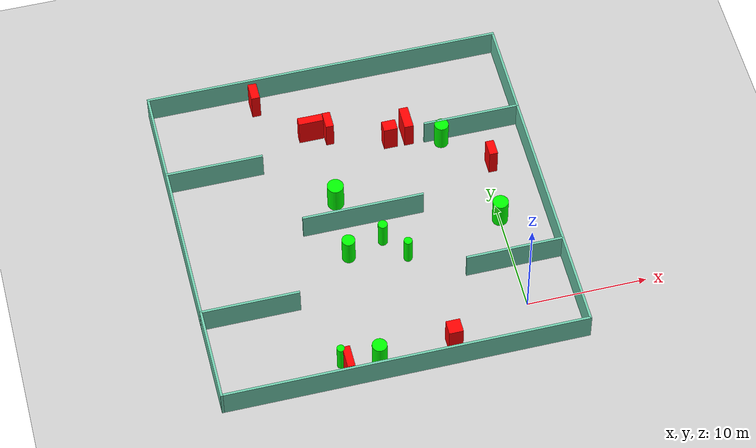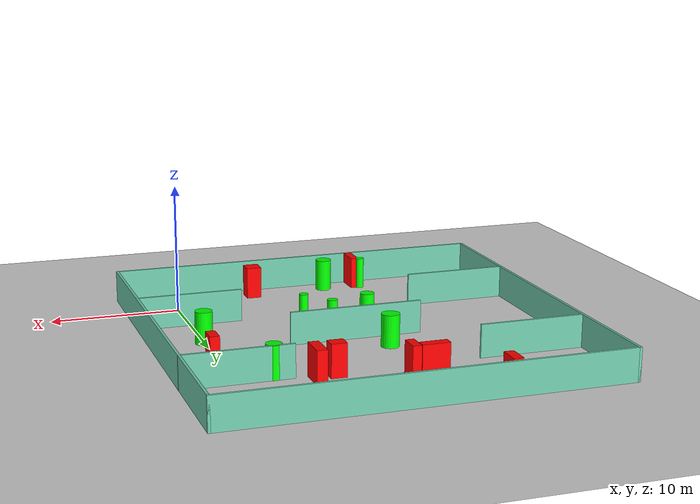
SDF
<sdf version="1.7">
 <world name="default">
  <light name="sun" type="directional">
   <pose>0 0 10 0 -0 0</pose>
   <diffuse>0.8 0.8 0.8 1</diffuse>
   <specular>0.2 0.2 0.2 1</specular>
   <attenuation>
    <range>1000</range>
    <constant>0.9</constant>
    <linear>0.01</linear>
    <quadratic>0.001</quadratic>
   </attenuation>
   <direction>-0.5 0.1 -0.9</direction>
   <spot><inner_angle>0</inner_angle><outer_angle>0</outer_angle><falloff>0</falloff></spot>
  </light>
  <model name="ground_plane">
   <static>1</static>
   <link name="link">
    <collision name="collision">
     <geometry><plane><normal>0 0 1</normal><size>100 100</size></plane></geometry>
     <surface>
      <contact><collide_bitmask>65535</collide_bitmask></contact>
      <friction><ode><mu>100</mu><mu2>50</mu2></ode></friction>
     </surface>
    </collision>
    <visual name="visual">
     <cast_shadows>0</cast_shadows>
     <geometry><plane><normal>0 0 1</normal><size>100 100</size></plane></geometry>
     <material>
      <script><uri>file://media/materials/scripts/gazebo.material</uri><name>Gazebo/Grey</name></script>
     </material>
    </visual>
   </link>
  </model>
  <gravity>0 0 -9.8</gravity>
  <magnetic_field>6e-06 2.3e-05 -4.2e-05</magnetic_field>
  <atmosphere type="adiabatic"/>
  <physics type="ode">
   <max_step_size>0.001</max_step_size>
   <real_time_factor>1</real_time_factor>
   <real_time_update_rate>1000</real_time_update_rate>
  </physics>
  <scene><ambient>0.4 0.4 0.4 1</ambient><background>0.7 0.7 0.7 1</background><shadows>1</shadows></scene>
  <spherical_coordinates>
   <surface_model>EARTH_WGS84</surface_model>
   <latitude_deg>0</latitude_deg>
   <longitude_deg>0</longitude_deg>
   <elevation>0</elevation>
   <heading_deg>0</heading_deg>
  </spherical_coordinates>
  <model name="my_base_walls">
   <link name="Wall_10">
    <collision name="Wall_10_Collision">
     <geometry><box><size>8.2 0.2 2.5</size></box></geometry>
     <pose>0 0 1.25 0 -0 0</pose>
    </collision>
    <visual name="Wall_10_Visual">
     <pose>0 0 1.25 0 -0 0</pose>
     <geometry><box><size>8.2 0.2 2.5</size></box></geometry>
     <material>
      <script><uri>file://media/materials/scripts/gazebo.material</uri><name>Gazebo/Grey</name></script>
      <ambient>0.435294 0.796078 0.67451 1</ambient>
     </material>
     <meta><layer>0</layer></meta>
    </visual>
    <pose>-11 -7 0 0 -0 0</pose>
   </link>
   <link name="Wall_12">
    <collision name="Wall_12_Collision">
     <geometry><box><size>8.2 0.2 2.5</size></box></geometry>
     <pose>0 0 1.25 0 -0 0</pose>
    </collision>
    <visual name="Wall_12_Visual">
     <pose>0 0 1.25 0 -0 0</pose>
     <geometry><box><size>8.2 0.2 2.5</size></box></geometry>
     <material>
      <script><uri>file://media/materials/scripts/gazebo.material</uri><name>Gazebo/Grey</name></script>
      <ambient>0.435294 0.796078 0.67451 1</ambient>
     </material>
     <meta><layer>0</layer></meta>
    </visual>
    <pose>-11 7 0 0 -0 0</pose>
   </link>
   <link name="Wall_14">
    <collision name="Wall_14_Collision">
     <geometry><box><size>8.2 0.2 2.5</size></box></geometry>
     <pose>0 0 1.25 0 -0 0</pose>
    </collision>
    <visual name="Wall_14_Visual">
     <pose>0 0 1.25 0 -0 0</pose>
     <geometry><box><size>8.2 0.2 2.5</size></box></geometry>
     <material>
      <script><uri>file://media/materials/scripts/gazebo.material</uri><name>Gazebo/Grey</name></script>
      <ambient>0.435294 0.796078 0.67451 1</ambient>
     </material>
     <meta><layer>0</layer></meta>
    </visual>
    <pose>11 7 0 0 -0 3.14159</pose>
   </link>
   <link name="Wall_16">
    <collision name="Wall_16_Collision">
     <geometry><box><size>10.2 0.2 2.5</size></box></geometry>
     <pose>0 0 1.25 0 -0 0</pose>
    </collision>
    <visual name="Wall_16_Visual">
     <pose>0 0 1.25 0 -0 0</pose>
     <geometry><box><size>10.2 0.2 2.5</size></box></geometry>
     <material>
      <script><uri>file://media/materials/scripts/gazebo.material</uri><name>Gazebo/Grey</name></script>
      <ambient>0.435294 0.796078 0.67451 1</ambient>
     </material>
     <meta><layer>0</layer></meta>
    </visual>
    <pose>0 0 0 0 -0 3.14159</pose>
   </link>
   <link name="Wall_2">
    <collision name="Wall_2_Collision">
     <geometry><box><size>30.2 0.2 2.5</size></box></geometry>
     <pose>0 0 1.25 0 -0 0</pose>
    </collision>
    <visual name="Wall_2_Visual">
     <pose>0 0 1.25 0 -0 0</pose>
     <geometry><box><size>30.2 0.2 2.5</size></box></geometry>
     <material>
      <script><uri>file://media/materials/scripts/gazebo.material</uri><name>Gazebo/Grey</name></script>
      <ambient>0.435294 0.796078 0.67451 1</ambient>
     </material>
     <meta><layer>0</layer></meta>
    </visual>
    <pose>0 -15 0 0 -0 3.14159</pose>
   </link>
   <link name="Wall_3">
    <collision name="Wall_3_Collision">
     <geometry><box><size>30.2 0.2 2.5</size></box></geometry>
     <pose>0 0 1.25 0 -0 0</pose>
    </collision>
    <visual name="Wall_3_Visual">
     <pose>0 0 1.25 0 -0 0</pose>
     <geometry><box><size>30.2 0.2 2.5</size></box></geometry>
     <material>
      <script><uri>file://media/materials/scripts/gazebo.material</uri><name>Gazebo/Grey</name></script>
      <ambient>0.435294 0.796078 0.67451 1</ambient>
     </material>
     <meta><layer>0</layer></meta>
    </visual>
    <pose>-15 0 0 0 -0 1.5708</pose>
   </link>
   <link name="Wall_4">
    <collision name="Wall_4_Collision">
     <geometry><box><size>30.2 0.2 2.5</size></box></geometry>
     <pose>0 0 1.25 0 -0 0</pose>
    </collision>
    <visual name="Wall_4_Visual">
     <pose>0 0 1.25 0 -0 0</pose>
     <geometry><box><size>30.2 0.2 2.5</size></box></geometry>
     <material>
      <script><uri>file://media/materials/scripts/gazebo.material</uri><name>Gazebo/Grey</name></script>
      <ambient>0.435294 0.796078 0.67451 1</ambient>
     </material>
     <meta><layer>0</layer></meta>
    </visual>
    <pose>0 15 0 0 -0 0</pose>
   </link>
   <link name="Wall_6">
    <collision name="Wall_6_Collision">
     <geometry><box><size>30.2 0.2 2.5</size></box></geometry>
     <pose>0 0 1.25 0 -0 0</pose>
    </collision>
    <visual name="Wall_6_Visual">
     <pose>0 0 1.25 0 -0 0</pose>
     <geometry><box><size>30.2 0.2 2.5</size></box></geometry>
     <material>
      <script><uri>file://media/materials/scripts/gazebo.material</uri><name>Gazebo/Grey</name></script>
      <ambient>0.435294 0.796078 0.67451 1</ambient>
     </material>
     <meta><layer>0</layer></meta>
    </visual>
    <pose>15 0 0 0 -0 1.5708</pose>
   </link>
   <link name="Wall_8">
    <collision name="Wall_8_Collision">
     <geometry><box><size>8.2 0.2 2.5</size></box></geometry>
     <pose>0 0 1.25 0 -0 0</pose>
    </collision>
    <visual name="Wall_8_Visual">
     <pose>0 0 1.25 0 -0 0</pose>
     <geometry><box><size>8.2 0.2 2.5</size></box></geometry>
     <material>
      <script><uri>file://media/materials/scripts/gazebo.material</uri><name>Gazebo/Grey</name></script>
      <ambient>0.435294 0.796078 0.67451 1</ambient>
     </material>
     <meta><layer>0</layer></meta>
    </visual>
    <pose>11 -7 0 0 -0 3.14159</pose>
   </link>
   <static>1</static>
   <pose>-11 11 0 0 -0 0</pose>
  </model>
  <model name="cylinder1">
   <static>1</static>
   <link name="link">
    <inertial>
     <mass>1</mass>
     <inertia><ixx>0.5</ixx><ixy>0</ixy><ixz>0</ixz><iyy>0.5</iyy><iyz>0</iyz><izz>1</izz></inertia>
    </inertial>
    <collision name="collision">
     <geometry><cylinder><radius>0.5513352554364256</radius><length>2.5</length></cylinder></geometry>
    </collision>
    <visual name="visual">
     <geometry><cylinder><radius>0.5513352554364256</radius><length>2.5</length></cylinder></geometry>
     <material>
      <ambient>0 1 0 1</ambient>
      <diffuse>0 1 0 1</diffuse>
      <specular>0.1 0.1 0.1 1</specular>
      <emissive>0 0 0 0</emissive>
     </material>
    </visual>
   </link>
   <pose>-12.972573947722967 7.961723705255546 1.25 0 0 0</pose>
  </model>
  <model name="cylinder2">
   <static>1</static>
   <link name="link">
    <inertial>
     <mass>1</mass>
     <inertia><ixx>0.5</ixx><ixy>0</ixy><ixz>0</ixz><iyy>0.5</iyy><iyz>0</iyz><izz>1</izz></inertia>
    </inertial>
    <collision name="collision">
     <geometry><cylinder><radius>0.6138288860085919</radius><length>2.5</length></cylinder></geometry>
    </collision>
    <visual name="visual">
     <geometry><cylinder><radius>0.6138288860085919</radius><length>2.5</length></cylinder></geometry>
     <material>
      <ambient>0 1 0 1</ambient>
      <diffuse>0 1 0 1</diffuse>
      <specular>0.1 0.1 0.1 1</specular>
      <emissive>0 0 0 0</emissive>
     </material>
    </visual>
   </link>
   <pose>-12.91001019505146 -2.4635879589238265 1.25 0 0 0</pose>
  </model>
  <model name="cylinder3">
   <static>1</static>
   <link name="link">
    <inertial>
     <mass>1</mass>
     <inertia><ixx>0.5</ixx><ixy>0</ixy><ixz>0</ixz><iyy>0.5</iyy><iyz>0</iyz><izz>1</izz></inertia>
    </inertial>
    <collision name="collision">
     <geometry><cylinder><radius>0.5940500761247494</radius><length>2.5</length></cylinder></geometry>
    </collision>
    <visual name="visual">
     <geometry><cylinder><radius>0.5940500761247494</radius><length>2.5</length></cylinder></geometry>
     <material>
      <ambient>0 1 0 1</ambient>
      <diffuse>0 1 0 1</diffuse>
      <specular>0.1 0.1 0.1 1</specular>
      <emissive>0 0 0 0</emissive>
     </material>
    </visual>
   </link>
   <pose>-2.690612840241389 17.559873797720964 1.25 0 0 0</pose>
  </model>
  <model name="cylinder4">
   <static>1</static>
   <link name="link">
    <inertial>
     <mass>1</mass>
     <inertia><ixx>0.5</ixx><ixy>0</ixy><ixz>0</ixz><iyy>0.5</iyy><iyz>0</iyz><izz>1</izz></inertia>
    </inertial>
    <collision name="collision">
     <geometry><cylinder><radius>0.3521699322546369</radius><length>2.5</length></cylinder></geometry>
    </collision>
    <visual name="visual">
     <geometry><cylinder><radius>0.3521699322546369</radius><length>2.5</length></cylinder></geometry>
     <material>
      <ambient>0 1 0 1</ambient>
      <diffuse>0 1 0 1</diffuse>
      <specular>0.1 0.1 0.1 1</specular>
      <emissive>0 0 0 0</emissive>
     </material>
    </visual>
   </link>
   <pose>-8.279582275860744 6.734442127642808 1.25 0 0 0</pose>
  </model>
  <model name="cylinder5">
   <static>1</static>
   <link name="link">
    <inertial>
     <mass>1</mass>
     <inertia><ixx>0.5</ixx><ixy>0</ixy><ixz>0</ixz><iyy>0.5</iyy><iyz>0</iyz><izz>1</izz></inertia>
    </inertial>
    <collision name="collision">
     <geometry><cylinder><radius>0.3247273935144362</radius><length>2.5</length></cylinder></geometry>
    </collision>
    <visual name="visual">
     <geometry><cylinder><radius>0.3247273935144362</radius><length>2.5</length></cylinder></geometry>
     <material>
      <ambient>0 1 0 1</ambient>
      <diffuse>0 1 0 1</diffuse>
      <specular>0.1 0.1 0.1 1</specular>
      <emissive>0 0 0 0</emissive>
     </material>
    </visual>
   </link>
   <pose>-15.962486282696638 -2.025332528319877 1.25 0 0 0</pose>
  </model>
  <model name="cylinder6">
   <static>1</static>
   <link name="link">
    <inertial>
     <mass>1</mass>
     <inertia><ixx>0.5</ixx><ixy>0</ixy><ixz>0</ixz><iyy>0.5</iyy><iyz>0</iyz><izz>1</izz></inertia>
    </inertial>
    <collision name="collision">
     <geometry><cylinder><radius>0.6878222020689262</radius><length>2.5</length></cylinder></geometry>
    </collision>
    <visual name="visual">
     <geometry><cylinder><radius>0.6878222020689262</radius><length>2.5</length></cylinder></geometry>
     <material>
      <ambient>0 1 0 1</ambient>
      <diffuse>0 1 0 1</diffuse>
      <specular>0.1 0.1 0.1 1</specular>
      <emissive>0 0 0 0</emissive>
     </material>
    </visual>
   </link>
   <pose>-12.757939797439537 13.510016751698156 1.25 0 0 0</pose>
  </model>
  <model name="cylinder7">
   <static>1</static>
   <link name="link">
    <inertial>
     <mass>1</mass>
     <inertia><ixx>0.5</ixx><ixy>0</ixy><ixz>0</ixz><iyy>0.5</iyy><iyz>0</iyz><izz>1</izz></inertia>
    </inertial>
    <collision name="collision">
     <geometry><cylinder><radius>0.3938116497127333</radius><length>2.5</length></cylinder></geometry>
    </collision>
    <visual name="visual">
     <geometry><cylinder><radius>0.3938116497127333</radius><length>2.5</length></cylinder></geometry>
     <material>
      <ambient>0 1 0 1</ambient>
      <diffuse>0 1 0 1</diffuse>
      <specular>0.1 0.1 0.1 1</specular>
      <emissive>0 0 0 0</emissive>
     </material>
    </visual>
   </link>
   <pose>-9.892593453010353 8.826074418504248 1.25 0 0 0</pose>
  </model>
  <model name="cylinder8">
   <static>1</static>
   <link name="link">
    <inertial>
     <mass>1</mass>
     <inertia><ixx>0.5</ixx><ixy>0</ixy><ixz>0</ixz><iyy>0.5</iyy><iyz>0</iyz><izz>1</izz></inertia>
    </inertial>
    <collision name="collision">
     <geometry><cylinder><radius>0.6531424931617518</radius><length>2.5</length></cylinder></geometry>
    </collision>
    <visual name="visual">
     <geometry><cylinder><radius>0.6531424931617518</radius><length>2.5</length></cylinder></geometry>
     <material>
      <ambient>0 1 0 1</ambient>
      <diffuse>0 1 0 1</diffuse>
      <specular>0.1 0.1 0.1 1</specular>
      <emissive>0 0 0 0</emissive>
     </material>
    </visual>
   </link>
   <pose>0.027240556571193508 8.664564317899227 1.25 0 0 0</pose>
  </model>
  <model name="box1">
   <static>1</static>
   <link name="link">
    <inertial>
     <mass>1</mass>
     <inertia><ixx>0.083</ixx><ixy>0</ixy><ixz>0</ixz><iyy>0.083</iyy><iyz>0</iyz><izz>0.083</izz></inertia>
    </inertial>
    <collision name="collision">
     <geometry><box><size>0.7720717612275165 2.0362131698967434 2.5</size></box></geometry>
    </collision>
    <visual name="visual">
     <geometry><box><size>0.7720717612275165 2.0362131698967434 2.5</size></box></geometry>
     <material>
      <ambient>1 0 0 1</ambient>
      <diffuse>1 0 0 1</diffuse>
      <specular>0.1 0.1 0.1 1</specular>
      <emissive>0 0 0 0</emissive>
     </material>
    </visual>
    <sensor name="my_contact" type="contact">
     <contact><collision>box_collision</collision><topic>__default_topic__</topic></contact>
    </sensor>
   </link>
   <pose>-5.381384117366826 19.001483472564107 1.25 0 0 0</pose>
  </model>
  <model name="box2">
   <static>1</static>
   <link name="link">
    <inertial>
     <mass>1</mass>
     <inertia><ixx>0.083</ixx><ixy>0</ixy><ixz>0</ixz><iyy>0.083</iyy><iyz>0</iyz><izz>0.083</izz></inertia>
    </inertial>
    <collision name="collision">
     <geometry><box><size>0.668641535850837 1.498119937814287 2.5</size></box></geometry>
    </collision>
    <visual name="visual">
     <geometry><box><size>0.668641535850837 1.498119937814287 2.5</size></box></geometry>
     <material>
      <ambient>1 0 0 1</ambient>
      <diffuse>1 0 0 1</diffuse>
      <specular>0.1 0.1 0.1 1</specular>
      <emissive>0 0 0 0</emissive>
     </material>
    </visual>
    <sensor name="my_contact" type="contact">
     <contact><collision>box_collision</collision><topic>__default_topic__</topic></contact>
    </sensor>
   </link>
   <pose>-11.800735208796798 20.34787887829893 1.25 0 0 0</pose>
  </model>
  <model name="box3">
   <static>1</static>
   <link name="link">
    <inertial>
     <mass>1</mass>
     <inertia><ixx>0.083</ixx><ixy>0</ixy><ixz>0</ixz><iyy>0.083</iyy><iyz>0</iyz><izz>0.083</izz></inertia>
    </inertial>
    <collision name="collision">
     <geometry><box><size>2.0838191472822447 0.7033495571050576 2.5</size></box></geometry>
    </collision>
    <visual name="visual">
     <geometry><box><size>2.0838191472822447 0.7033495571050576 2.5</size></box></geometry>
     <material>
      <ambient>1 0 0 1</ambient>
      <diffuse>1 0 0 1</diffuse>
      <specular>0.1 0.1 0.1 1</specular>
      <emissive>0 0 0 0</emissive>
     </material>
    </visual>
    <sensor name="my_contact" type="contact">
     <contact><collision>box_collision</collision><topic>__default_topic__</topic></contact>
    </sensor>
   </link>
   <pose>-13.224577086411243 20.728970266399944 1.25 0 0 0</pose>
  </model>
  <model name="box4">
   <static>1</static>
   <link name="link">
    <inertial>
     <mass>1</mass>
     <inertia><ixx>0.083</ixx><ixy>0</ixy><ixz>0</ixz><iyy>0.083</iyy><iyz>0</iyz><izz>0.083</izz></inertia>
    </inertial>
    <collision name="collision">
     <geometry><box><size>0.6222966977602139 1.9184562593149577 2.5</size></box></geometry>
    </collision>
    <visual name="visual">
     <geometry><box><size>0.6222966977602139 1.9184562593149577 2.5</size></box></geometry>
     <material>
      <ambient>1 0 0 1</ambient>
      <diffuse>1 0 0 1</diffuse>
      <specular>0.1 0.1 0.1 1</specular>
      <emissive>0 0 0 0</emissive>
     </material>
    </visual>
    <sensor name="my_contact" type="contact">
     <contact><collision>box_collision</collision><topic>__default_topic__</topic></contact>
    </sensor>
   </link>
   <pose>-15.517815187953882 -2.9108629957091168 1.25 0 0 0</pose>
  </model>
  <model name="box5">
   <static>1</static>
   <link name="link">
    <inertial>
     <mass>1</mass>
     <inertia><ixx>0.083</ixx><ixy>0</ixy><ixz>0</ixz><iyy>0.083</iyy><iyz>0</iyz><izz>0.083</izz></inertia>
    </inertial>
    <collision name="collision">
     <geometry><box><size>1.1655579128679503 0.9842806733382072 2.5</size></box></geometry>
    </collision>
    <visual name="visual">
     <geometry><box><size>1.1655579128679503 0.9842806733382072 2.5</size></box></geometry>
     <material>
      <ambient>1 0 0 1</ambient>
      <diffuse>1 0 0 1</diffuse>
      <specular>0.1 0.1 0.1 1</specular>
      <emissive>0 0 0 0</emissive>
     </material>
    </visual>
    <sensor name="my_contact" type="contact">
     <contact><collision>box_collision</collision><topic>__default_topic__</topic></contact>
    </sensor>
   </link>
   <pose>-6.930147501863679 18.520657434643972 1.25 0 0 0</pose>
  </model>
  <model name="box6">
   <static>1</static>
   <link name="link">
    <inertial>
     <mass>1</mass>
     <inertia><ixx>0.083</ixx><ixy>0</ixy><ixz>0</ixz><iyy>0.083</iyy><iyz>0</iyz><izz>0.083</izz></inertia>
    </inertial>
    <collision name="collision">
     <geometry><box><size>0.7345293964061369 1.5559455174599055 2.5</size></box></geometry>
    </collision>
    <visual name="visual">
     <geometry><box><size>0.7345293964061369 1.5559455174599055 2.5</size></box></geometry>
     <material>
      <ambient>1 0 0 1</ambient>
      <diffuse>1 0 0 1</diffuse>
      <specular>0.1 0.1 0.1 1</specular>
      <emissive>0 0 0 0</emissive>
     </material>
    </visual>
    <sensor name="my_contact" type="contact">
     <contact><collision>box_collision</collision><topic>__default_topic__</topic></contact>
    </sensor>
   </link>
   <pose>-17.176950697373226 24.793511169480137 1.25 0 0 0</pose>
  </model>
  <model name="box7">
   <static>1</static>
   <link name="link">
    <inertial>
     <mass>1</mass>
     <inertia><ixx>0.083</ixx><ixy>0</ixy><ixz>0</ixz><iyy>0.083</iyy><iyz>0</iyz><izz>0.083</izz></inertia>
    </inertial>
    <collision name="collision">
     <geometry><box><size>1.1747798523152646 1.2136158144231006 2.5</size></box></geometry>
    </collision>
    <visual name="visual">
     <geometry><box><size>1.1747798523152646 1.2136158144231006 2.5</size></box></geometry>
     <material>
      <ambient>1 0 0 1</ambient>
      <diffuse>1 0 0 1</diffuse>
      <specular>0.1 0.1 0.1 1</specular>
      <emissive>0 0 0 0</emissive>
     </material>
    </visual>
    <sensor name="my_contact" type="contact">
     <contact><collision>box_collision</collision><topic>__default_topic__</topic></contact>
    </sensor>
   </link>
   <pose>-6.71738129627796 -2.203518912413043 1.25 0 0 0</pose>
  </model>
  <model name="box8">
   <static>1</static>
   <link name="link">
    <inertial>
     <mass>1</mass>
     <inertia><ixx>0.083</ixx><ixy>0</ixy><ixz>0</ixz><iyy>0.083</iyy><iyz>0</iyz><izz>0.083</izz></inertia>
    </inertial>
    <collision name="collision">
     <geometry><box><size>0.7127353312062865 1.3785342228746291 2.5</size></box></geometry>
    </collision>
    <visual name="visual">
     <geometry><box><size>0.7127353312062865 1.3785342228746291 2.5</size></box></geometry>
     <material>
      <ambient>1 0 0 1</ambient>
      <diffuse>1 0 0 1</diffuse>
      <specular>0.1 0.1 0.1 1</specular>
      <emissive>0 0 0 0</emissive>
     </material>
    </visual>
    <sensor name="my_contact" type="contact">
     <contact><collision>box_collision</collision><topic>__default_topic__</topic></contact>
    </sensor>
   </link>
   <pose>0.7540727260398334 14.224814579084075 1.25 0 0 0</pose>
  </model>
 </world>
</sdf>
